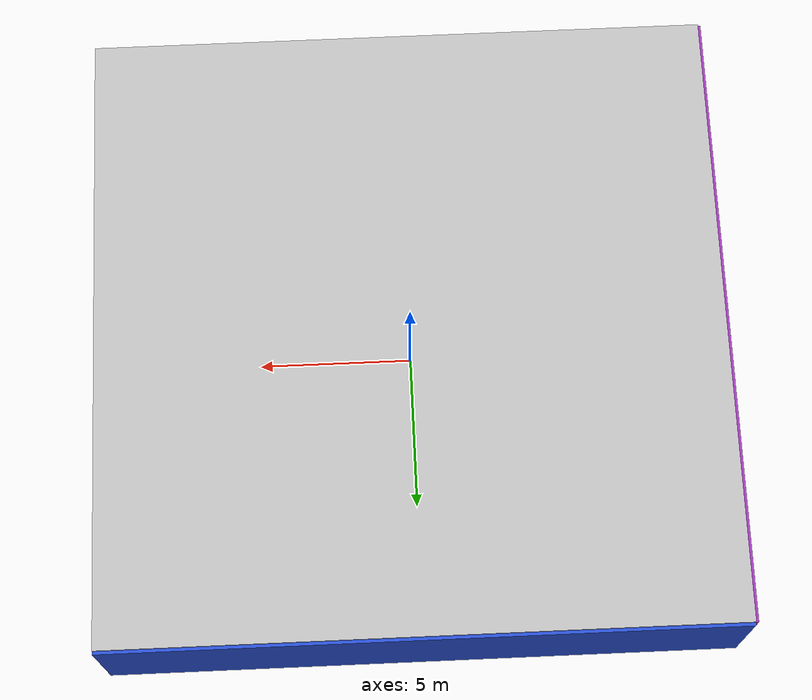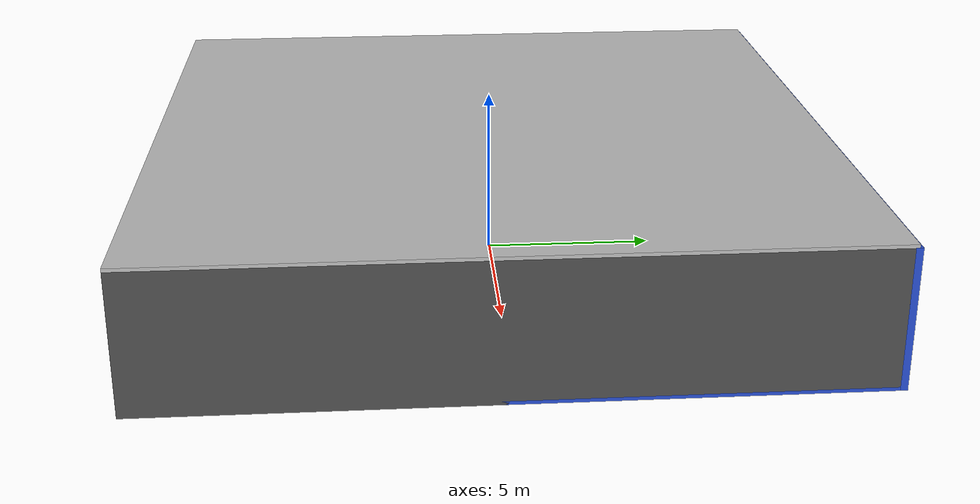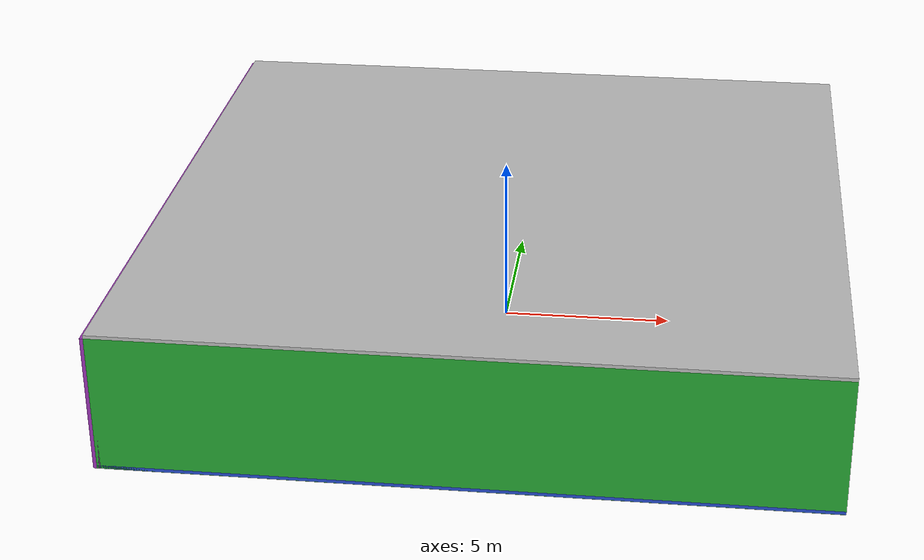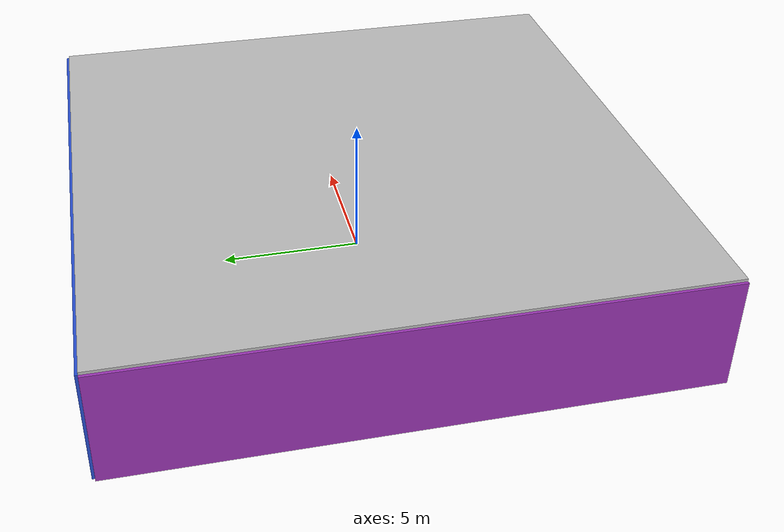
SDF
<sdf version="1.4">
 <world name="default">
  <physics type="ode">
   <max_step_size>0.001</max_step_size>
   <real_time_factor>1</real_time_factor>
   <real_time_update_rate>1000</real_time_update_rate>
   <gravity>0 0 -9.8</gravity>
  </physics>
  <scene><ambient>0.4 0.4 0.4 1</ambient><background>0.7 0.7 0.7 1</background><shadows>1</shadows></scene>
  <model name="Surrounding">
   <static>1</static>
   <link name="Ceiling">
    <collision name="Ceiling_Collision"><geometry><box><size>20 20 0.1</size></box></geometry></collision>
    <visual name="Ceiling_Visual">
     <geometry><box><size>20 20 0.1</size></box></geometry>
     <material>
      <script><uri>file://media/materials/scripts/gazebo.material</uri><name>Gazebo/JointAnchor</name></script>
     </material>
    </visual>
    <pose>0 0 4.05 0 0 0</pose>
   </link>
   <link name="Wall_South">
    <collision name="Wall_South_Collision">
     <geometry><box><size>20 0 4</size></box></geometry>
     <pose>0 0 2 0 -0 0</pose>
    </collision>
    <visual name="Wall_South_Visual">
     <pose>0 0 2 0 -0 0</pose>
     <geometry><box><size>20 0 4</size></box></geometry>
     <material>
      <script><uri>file://media/materials/scripts/gazebo.material</uri><name>Gazebo/GreenGlow</name></script>
     </material>
    </visual>
    <velocity_decay><linear>0</linear><angular>0</angular></velocity_decay>
    <pose>0 -10 0 0 -0 0</pose>
   </link>
   <link name="Wall_East">
    <collision name="Wall_21_Collision">
     <geometry><box><size>20 0 4</size></box></geometry>
     <pose>0 0 2 0 -0 0</pose>
    </collision>
    <visual name="Wall_21_Visual">
     <pose>0 0 2 0 -0 0</pose>
     <geometry><box><size>20 0 4</size></box></geometry>
     <material>
      <script><uri>file://media/materials/scripts/gazebo.material</uri><name>Gazebo/DarkGrey</name></script>
     </material>
    </visual>
    <velocity_decay><linear>0</linear><angular>0</angular></velocity_decay>
    <pose>10 0 0 0 -0 1.5708</pose>
   </link>
   <link name="Wall_North">
    <collision name="Wall_22_Collision">
     <geometry><box><size>20 0.2 4</size></box></geometry>
     <pose>0 0 2 0 -0 0</pose>
    </collision>
    <visual name="Wall_22_Visual">
     <pose>0 0 2 0 -0 0</pose>
     <geometry><box><size>20 0.2 4</size></box></geometry>
     <material>
      <script><uri>file://media/materials/scripts/gazebo.material</uri><name>Gazebo/Blue</name></script>
     </material>
    </visual>
    <velocity_decay><linear>0</linear><angular>0</angular></velocity_decay>
    <pose>0 10 0 0 -0 0</pose>
   </link>
   <link name="Wall_West">
    <collision name="Wall_23_Collision">
     <geometry><box><size>20 0.2 4</size></box></geometry>
     <pose>0 0 2 0 -0 0</pose>
    </collision>
    <visual name="Wall_23_Visual">
     <pose>0 0 2 0 -0 0</pose>
     <geometry><box><size>20 0.2 4</size></box></geometry>
     <material>
      <script><uri>file://media/materials/scripts/gazebo.material</uri><name>Gazebo/Purple</name></script>
     </material>
    </visual>
    <velocity_decay><linear>0</linear><angular>0</angular></velocity_decay>
    <pose>-10 0 0 0 0 -1.5708</pose>
   </link>
   <link name="Ground_link">
    <collision name="collision">
     <pose>0 0 .05 0 -0 0</pose>
     <geometry><box><size>20 20 0.1</size></box></geometry>
    </collision>
    <visual name="visual">
     <pose>0 0 .05 0 -0 0</pose>
     <geometry><box><size>20 20 0.1</size></box></geometry>
     <material>
      <script><uri>file://media/materials/scripts/gazebo.material</uri><name>Gazebo/Blue</name></script>
     </material>
    </visual>
   </link>
   <static>1</static>
  </model>
  <spherical_coordinates>
   <surface_model>EARTH_WGS84</surface_model>
   <latitude_deg>0</latitude_deg>
   <longitude_deg>0</longitude_deg>
   <elevation>0</elevation>
   <heading_deg>0</heading_deg>
  </spherical_coordinates>
  <light name="lightball_0" type="diffuse">
   <diffuse>0.8 0.8 0.8 1</diffuse>
   <specular>0.2 0.2 0.2 1</specular>
   <attenuation>
    <range>100</range>
    <constant>0.7</constant>
    <linear>0.01</linear>
    <quadratic>0.001</quadratic>
   </attenuation>
   <direction>-0.5 0.1 -0.9</direction>
   <pose>6.66002941189 8.0102365648 1.1552075579 0 0 0</pose>
  </light>
  <light name="lightball_1" type="diffuse">
   <diffuse>0.8 0.8 0.8 1</diffuse>
   <specular>0.2 0.2 0.2 1</specular>
   <attenuation>
    <range>100</range>
    <constant>0.7</constant>
    <linear>0.01</linear>
    <quadratic>0.001</quadratic>
   </attenuation>
   <direction>-0.5 0.1 -0.9</direction>
   <pose>0.141858644437 -5.00947695464 3.60938234912 0 0 0</pose>
  </light>
  <light name="lightball_2" type="diffuse">
   <diffuse>0.8 0.8 0.8 1</diffuse>
   <specular>0.2 0.2 0.2 1</specular>
   <attenuation>
    <range>100</range>
    <constant>0.7</constant>
    <linear>0.01</linear>
    <quadratic>0.001</quadratic>
   </attenuation>
   <direction>-0.5 0.1 -0.9</direction>
   <pose>3.82310429115 5.03710674206 2.8884937625 0 0 0</pose>
  </light>
  <light name="lightball_3" type="diffuse">
   <diffuse>0.8 0.8 0.8 1</diffuse>
   <specular>0.2 0.2 0.2 1</specular>
   <attenuation>
    <range>100</range>
    <constant>0.7</constant>
    <linear>0.01</linear>
    <quadratic>0.001</quadratic>
   </attenuation>
   <direction>-0.5 0.1 -0.9</direction>
   <pose>-7.66741218059 -9.14791159714 0.895514242334 0 0 0</pose>
  </light>
  <include><uri>model://cabinet</uri><pose>-7.49928718092 -7.16885855205 0 0 0 1.60860268121</pose></include>
  <include><uri>model://table</uri><pose>-7.80500275365 -4.15378591518 0 0 0 1.81637078483</pose></include>
  <include>
   <uri>model://construction_cone</uri>
   <pose>-4.64648644121 6.89180765229 0 0 0 0.0744109129803</pose>
  </include>
  <include>
   <uri>model://construction_cone</uri>
   <pose>0.79863625384 -8.07987175941 0 0 0 1.86456513252</pose>
  </include>
  <include>
   <uri>model://construction_cone</uri>
   <pose>2.10416855304 -3.98893183577 0 0 0 1.08944567455</pose>
  </include>
  <include>
   <uri>model://textured_shapes</uri>
   <pose>5.14931787263 -0.971193030522 0 0 0 0.062520191013</pose>
  </include>
 </world>
</sdf>

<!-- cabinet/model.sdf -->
<sdf version="1.5">
  <model name="cabinet">
    <static>true</static>
    <link name="cabinet_bottom_plate">
      <inertial>
        <pose>0 0 -1 0 0 0</pose>
        <inertia>
          <ixx>2.050000</ixx>
          <ixy>0</ixy>
          <ixz>0</ixz>
          <iyy>2.050000</iyy>
          <iyz>0</iyz>
          <izz>2.050000</izz>
        </inertia>
        <mass>25.000000</mass>
      </inertial>
      <collision name="cabinet_bottom_plate_geom">
        <pose>0 0 0.010000 0 0 0</pose>
        <geometry>
          <box>
            <size>0.450000 0.450000 0.020000</size>
          </box>
        </geometry>
      </collision>
      <visual name="cabinet_bottom_plate_geom_visual">
        <pose>0 0 0.010000 0 0 0</pose>
        <geometry>
          <box>
            <size>0.450000 0.450000 0.020000</size>
          </box>
        </geometry>
        <material>
          <script>
            <uri>model://media/materials/scripts/gazebo.material</uri>
            <name>Gazebo/Wood</name>
          </script>
        </material>
      </visual>
      <collision name="cabinet_bottom_plate_geom_cabinet_back_plate">
        <pose>0.235000 0 0.510000 0 0 0</pose>
        <geometry>
          <box>
            <size>0.020000 0.450000 1.020000</size>
          </box>
        </geometry>
      </collision>
      <visual name="cabinet_bottom_plate_geom_cabinet_back_plate_visual">
        <pose>0.235000 0 0.510000 0 0 0</pose>
        <geometry>
          <box>
            <size>0.020000 0.450000 1.020000</size>
          </box>
        </geometry>
        <material>
          <script>
            <uri>model://media/materials/scripts/gazebo.material</uri>
            <name>Gazebo/Wood</name>
          </script>
        </material>
      </visual>
      <collision name="cabinet_bottom_plate_geom_cabinet_left_plate">
        <pose>0 0.235000 0.510000 0 0 0</pose>
        <geometry>
          <box>
            <size>0.450000 0.020000 1.020000</size>
          </box>
        </geometry>
      </collision>
      <visual name="cabinet_bottom_plate_geom_cabinet_left_plate_visual">
        <pose>0 0.235000 0.510000 0 0 0</pose>
        <geometry>
          <box>
            <size>0.450000 0.020000 1.020000</size>
          </box>
        </geometry>
        <material>
          <script>
            <uri>model://media/materials/scripts/gazebo.material</uri>
            <name>Gazebo/Wood</name>
          </script>
        </material>
      </visual>
      <collision name="cabinet_bottom_plate_geom_cabinet_middle_plate">
        <pose>0 0 0.510000 0 0 0</pose>
        <geometry>
          <box>
            <size>0.450000 0.450000 0.020000</size>
          </box>
        </geometry>
      </collision>
      <visual name="cabinet_bottom_plate_geom_cabinet_middle_plate_visual">
        <pose>0 0 0.510000 0 0 0</pose>
        <geometry>
          <box>
            <size>0.450000 0.450000 0.020000</size>
          </box>
        </geometry>
        <material>
          <script>
            <uri>model://media/materials/scripts/gazebo.material</uri>
            <name>Gazebo/Wood</name>
          </script>
        </material>
      </visual>
      <collision name="cabinet_bottom_plate_geom_cabinet_right_plate">
        <pose>0 -0.235000 0.510000 0 0 0</pose>
        <geometry>
          <box>
            <size>0.450000 0.020000 1.020000</size>
          </box>
        </geometry>
      </collision>
      <visual name="cabinet_bottom_plate_geom_cabinet_right_plate_visual">
        <pose>0 -0.235000 0.510000 0 0 0</pose>
        <geometry>
          <box>
            <size>0.450000 0.020000 1.020000</size>
          </box>
        </geometry>
        <material>
          <script>
            <uri>model://media/materials/scripts/gazebo.material</uri>
            <name>Gazebo/Wood</name>
          </script>
        </material>
      </visual>
      <collision name="cabinet_bottom_plate_geom_cabinet_top_plate">
        <pose>0 0 1.010000 0 0 0</pose>
        <geometry>
          <box>
            <size>0.450000 0.450000 0.020000</size>
          </box>
        </geometry>
      </collision>
      <visual name="cabinet_bottom_plate_geom_cabinet_top_plate_visual">
        <pose>0 0 1.010000 0 0 0</pose>
        <geometry>
          <box>
            <size>0.450000 0.450000 0.020000</size>
          </box>
        </geometry>
        <material>
          <script>
            <uri>model://media/materials/scripts/gazebo.material</uri>
            <name>Gazebo/Wood</name>
          </script>
        </material>
      </visual>
    </link>
  </model>
</sdf>

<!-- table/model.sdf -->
<sdf version="1.5">
  <model name="table">
    <static>true</static>
    <link name="link">
      <collision name="surface">
        <pose>0 0 1.0 0 0 0</pose>
        <geometry>
          <box>
            <size>1.5 0.8 0.03</size>
          </box>
        </geometry>
        <surface>
          <friction>
            <ode>
              <mu>0.6</mu>
              <mu2>0.6</mu2>
            </ode>
          </friction>
        </surface>
      </collision>
      <visual name="visual1">
        <pose>0 0 1.0 0 0 0</pose>
        <geometry>
          <box>
            <size>1.5 0.8 0.03</size>
          </box>
        </geometry>
        <material>
          <script>
            <uri>model://media/materials/scripts/gazebo.material</uri>
            <name>Gazebo/Wood</name>
          </script>
        </material>
      </visual>
      <collision name="front_left_leg">
        <pose>0.68 0.38 0.5 0 0 0</pose>
        <geometry>
          <cylinder>
            <radius>0.02</radius>
            <length>1.0</length>
          </cylinder>
        </geometry>
      </collision>
      <visual name="front_left_leg">
        <pose>0.68 0.38 0.5 0 0 0</pose>
        <geometry>
          <cylinder>
            <radius>0.02</radius>
            <length>1.0</length>
          </cylinder>
        </geometry>
        <material>
          <script>
            <uri>model://media/materials/scripts/gazebo.material</uri>
            <name>Gazebo/Grey</name>
          </script>
        </material>
      </visual>
      <collision name="front_right_leg">
        <pose>0.68 -0.38 0.5 0 0 0</pose>
        <geometry>
          <cylinder>
            <radius>0.02</radius>
            <length>1.0</length>
          </cylinder>
        </geometry>
      </collision>
      <visual name="front_right_leg">
        <pose>0.68 -0.38 0.5 0 0 0</pose>
        <geometry>
          <cylinder>
            <radius>0.02</radius>
            <length>1.0</length>
          </cylinder>
        </geometry>
        <material>
          <script>
            <uri>model://media/materials/scripts/gazebo.material</uri>
            <name>Gazebo/Grey</name>
          </script>
        </material>
      </visual>
      <collision name="back_right_leg">
        <pose>-0.68 -0.38 0.5 0 0 0</pose>
        <geometry>
          <cylinder>
            <radius>0.02</radius>
            <length>1.0</length>
          </cylinder>
        </geometry>
      </collision>
      <visual name="back_right_leg">
        <pose>-0.68 -0.38 0.5 0 0 0</pose>
        <geometry>
          <cylinder>
            <radius>0.02</radius>
            <length>1.0</length>
          </cylinder>
        </geometry>
        <material>
          <script>
            <uri>model://media/materials/scripts/gazebo.material</uri>
            <name>Gazebo/Grey</name>
          </script>
        </material>
      </visual>
      <collision name="back_left_leg">
        <pose>-0.68 0.38 0.5 0 0 0</pose>
        <geometry>
          <cylinder>
            <radius>0.02</radius>
            <length>1.0</length>
          </cylinder>
        </geometry>
      </collision>
      <visual name="back_left_leg">
        <pose>-0.68 0.38 0.5 0 0 0</pose>
        <geometry>
          <cylinder>
            <radius>0.02</radius>
            <length>1.0</length>
          </cylinder>
        </geometry>
        <material>
          <script>
            <uri>model://media/materials/scripts/gazebo.material</uri>
            <name>Gazebo/Grey</name>
          </script>
        </material>
      </visual>
    </link>
  </model>
</sdf>

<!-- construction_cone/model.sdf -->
<sdf version="1.5">
  <model name="Construction Cone">
    <link name="link">
      <collision name="collision">
        <geometry>
          <mesh>
            <scale>10 10 10</scale>
            <uri>file://isr-testbed/construction_cone/meshes/construction_cone.dae</uri>
          </mesh>
        </geometry>
      </collision>
      <visual name="visual">
        <geometry>
          <mesh>
            <scale>10 10 10</scale>
            <uri>file://isr-testbed/construction_cone/meshes/construction_cone.dae</uri>
          </mesh>
        </geometry>
      </visual>
    </link>
  </model>
</sdf>

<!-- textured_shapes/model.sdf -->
<sdf version="1.6">
  <model name="textured_shapes">
    <pose>0 0 0.5 0 0 0</pose>
    <link name="box">
      <pose>0 -1.5 0 0 0 0</pose>
      <collision name="collision">
        <geometry>
          <box>
            <size>1 1 1</size>
          </box>
        </geometry>
      </collision>
      <visual name="visual">
        <geometry>
          <box>
            <size>1 1 1</size>
          </box>
        </geometry>
        <material>
          <script>
            <uri>model://../model_source/models/textured_shapes/materials/scripts</uri>
            <uri>model://../model_source/models/textured_shapes/materials/textures</uri>
            <name>TexturedShape/Squares</name>
          </script>
        </material>
      </visual>
    </link>
    <link name="sphere">
      <collision name="collision">
        <geometry>
          <sphere>
            <radius>0.5</radius>
          </sphere>
        </geometry>
      </collision>
      <visual name="visual">
        <geometry>
          <sphere>
            <radius>0.5</radius>
          </sphere>
        </geometry>
        <material>
          <script>
            <uri>model://../model_source/models/textured_shapes/materials/scripts</uri>
            <uri>model://../model_source/models/textured_shapes/materials/textures</uri>
            <name>TexturedShape/Squares</name>
          </script>
        </material>
      </visual>
    </link>
    <link name="cylinder">
      <pose>0 1.5 0 0 0 0</pose>
      <collision name="collision">
        <geometry>
          <cylinder>
            <radius>0.5</radius>
            <length>1</length>
          </cylinder>
        </geometry>
      </collision>
      <visual name="visual">
        <geometry>
          <cylinder>
            <radius>0.5</radius>
            <length>1</length>
          </cylinder>
        </geometry>
        <material>
          <script>
            <uri>model://../model_source/models/textured_shapes/materials/scripts</uri>
            <uri>model://../model_source/models/textured_shapes/materials/textures</uri>
            <name>TexturedShape/Squares</name>
          </script>
        </material>
      </visual>
    </link>
  </model>
</sdf>
